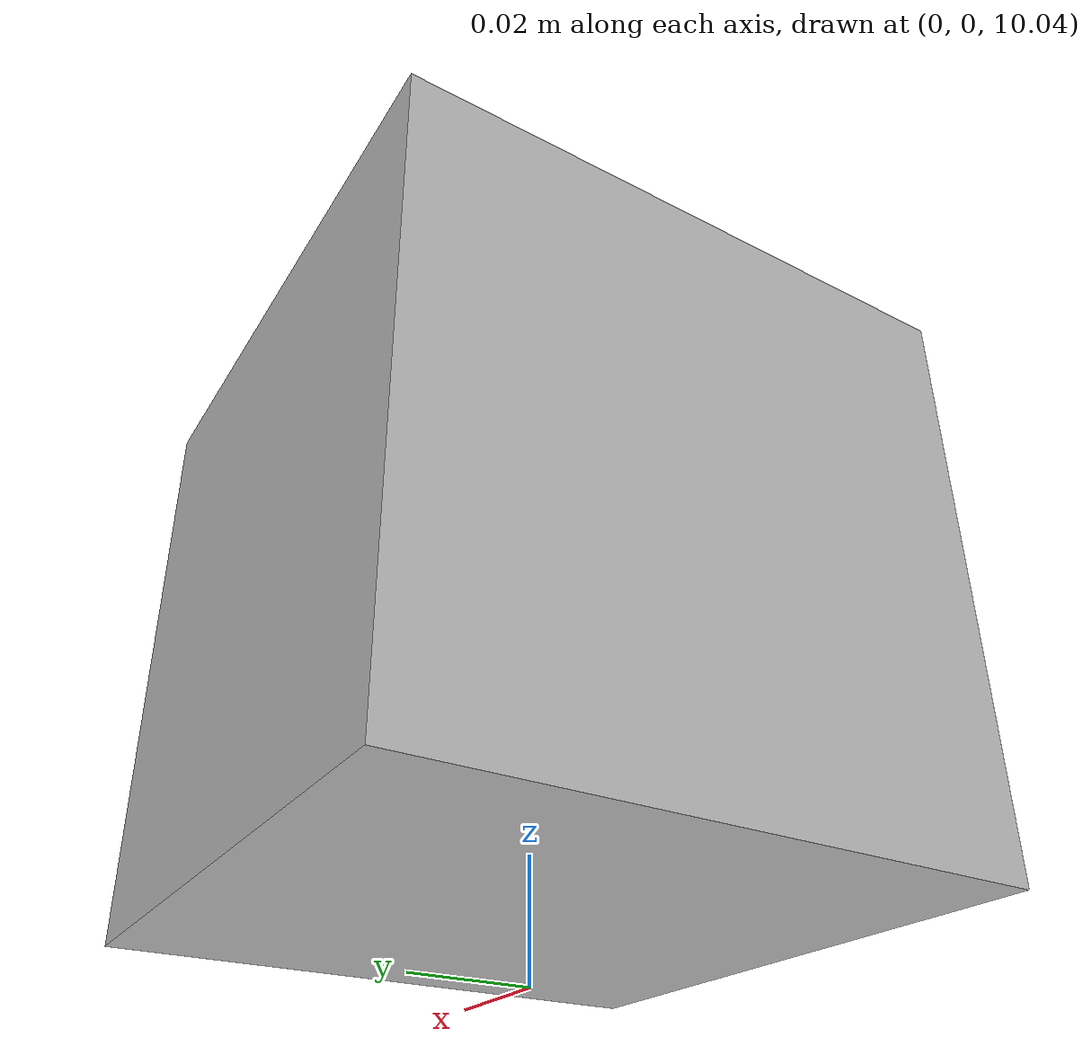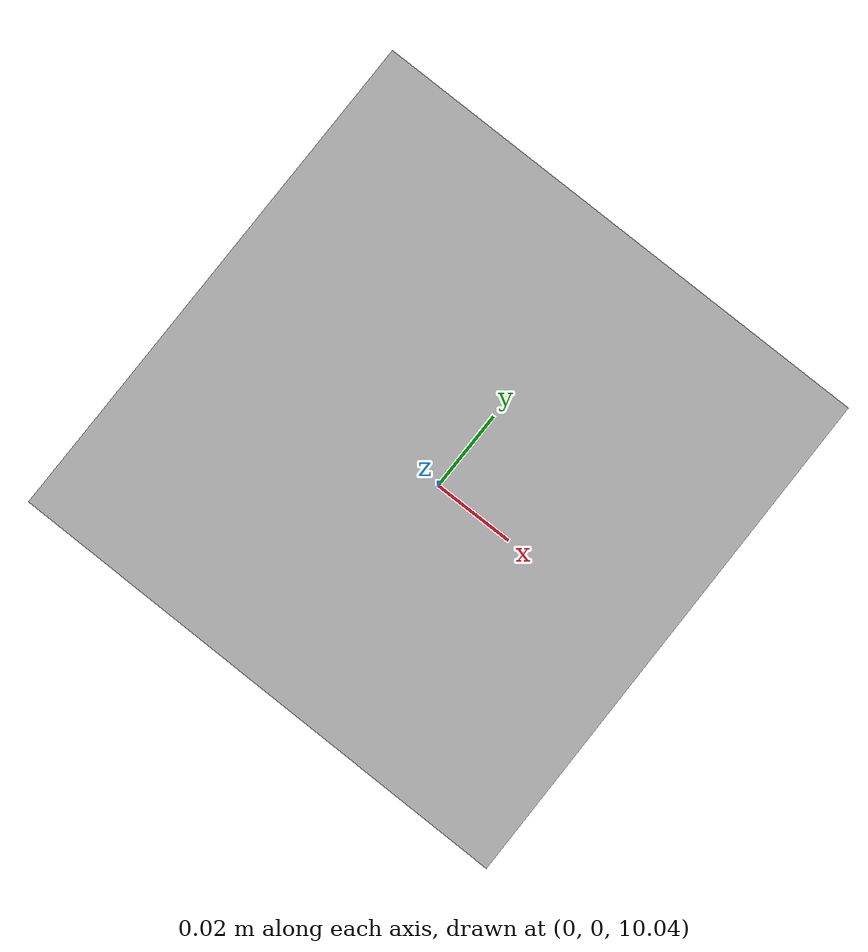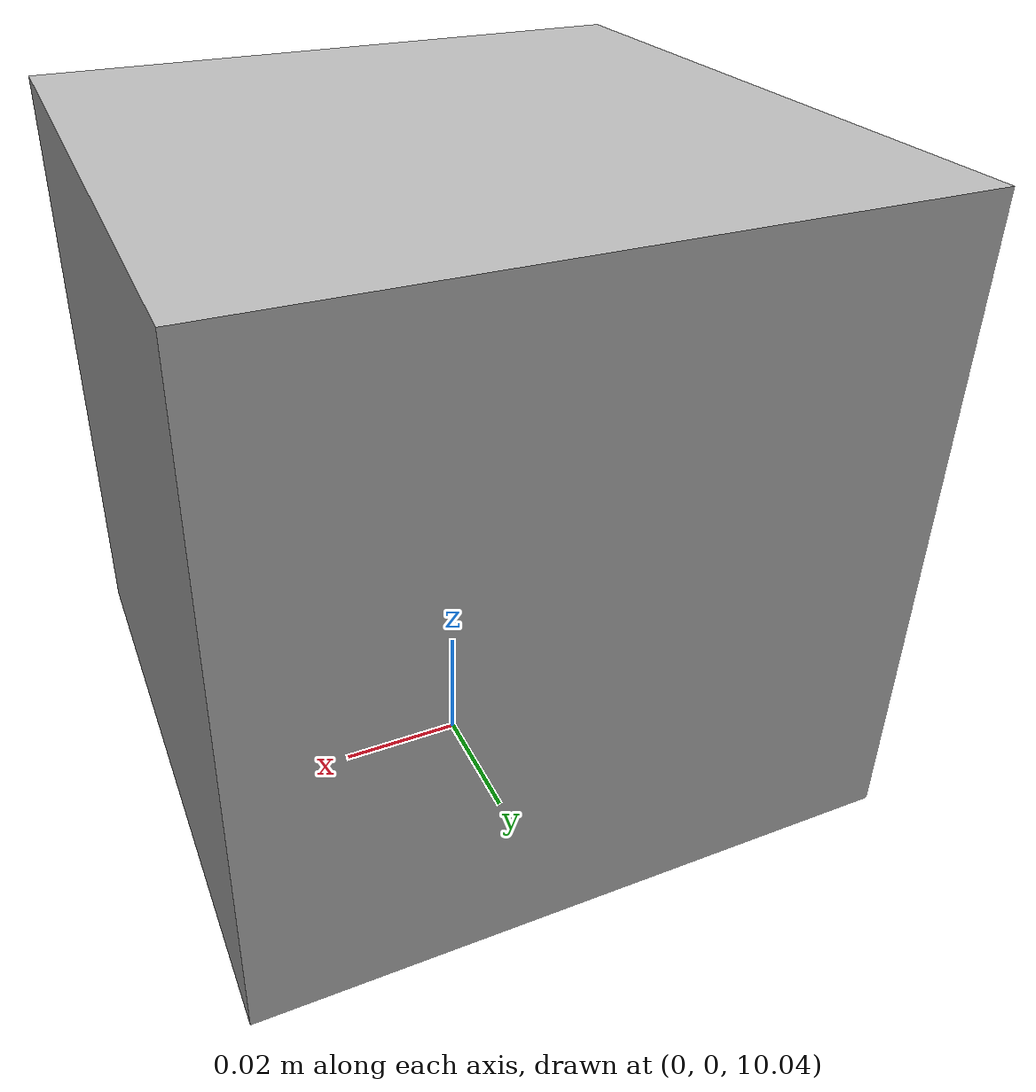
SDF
<?xml version="1.0" ?>
<sdf version="1.5">
	<model name="overhead_camera">

		<!-- camera plugin --> <!-- not working -->
					<!-- Noise is sampled independently per pixel on each frame.
							 That pixel's noise value is added to each of its color
							 channels, which at that point lie in the range [0,1]. -->
			<link name='camera_link'>
        <pose>0 0 10.1 0 1.57 0</pose>
        <inertial>
          <mass>0.1</mass>
          <inertia>
            <ixx>1</ixx>
            <ixy>0</ixy>
            <ixz>0</ixz>
            <iyy>1</iyy>
            <iyz>0</iyz>
            <izz>1</izz>
          </inertia>
        </inertial>
        <collision name='collision'>
          <geometry>
            <box>
              <size>0.1 0.1 0.1</size>
            </box>
          </geometry>
          <max_contacts>10</max_contacts>
          <surface>
            <bounce/>
            <friction>
              <ode/>
            </friction>
            <contact>
              <ode/>
            </contact>
          </surface>
        </collision>
        <visual name='visual'>
          <geometry>
            <box>
              <size>0.1 0.1 0.1</size>
            </box>
          </geometry>
        </visual>
        <sensor name='camera' type='camera'>
          <camera name='main_camera'>
            <horizontal_fov>1.047</horizontal_fov>
            <image>
              <width>640</width>
              <height>480</height>
            </image>
            <clip>
              <near>0.1</near>
              <far>100</far>
            </clip>

          </camera>
          <plugin name='camera_control' filename='libgazebo_ros_camera.so'>
            <cameraName>/main_camera</cameraName>
            <alwaysOn>true</alwaysOn>
            <updateRate>60</updateRate>
            <imageTopicName>/main/image_raw</imageTopicName>
            <cameraInfoTopicName>/main/camera_info</cameraInfoTopicName>
            <frameName>main_camera</frameName>
          </plugin>

          <always_on>1</always_on>
          <update_rate>30</update_rate>
          <visualize>0</visualize>
        </sensor>
        <velocity_decay>
          <linear>0</linear>
          <angular>0</angular>
        </velocity_decay>
        <self_collide>0</self_collide>
        <kinematic>0</kinematic>
        <gravity>1</gravity>
      </link>

	</model>
</sdf>
